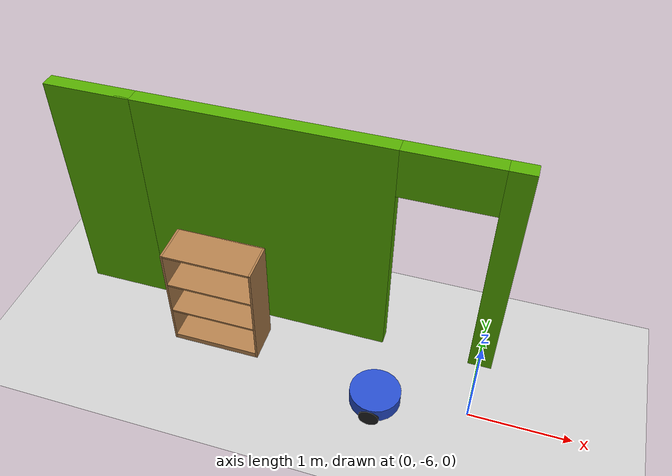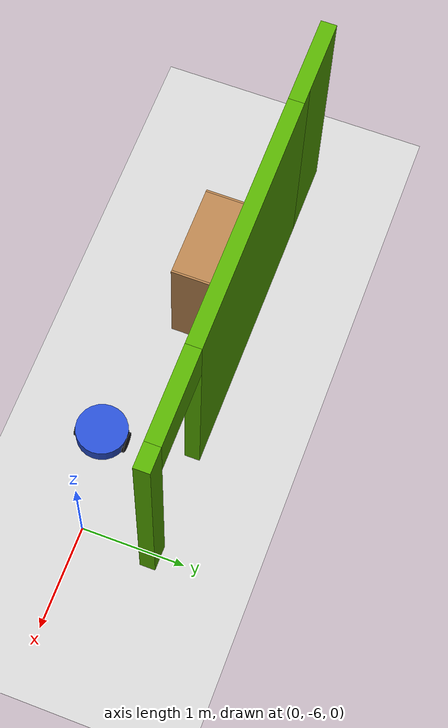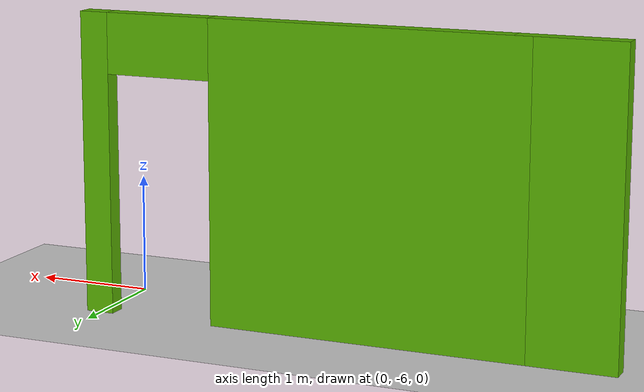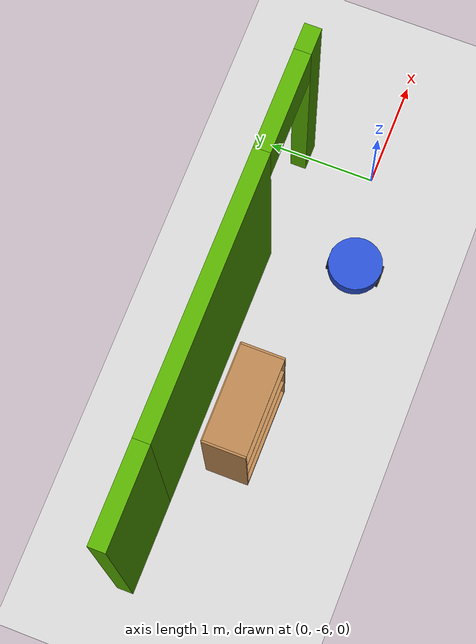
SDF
<sdf version="1.6">
 <world name="default">
  <model name="ground_plane">
   <static>1</static>
   <link name="link">
    <collision name="collision">
     <geometry><plane><normal>0 0 1</normal><size>100 100</size></plane></geometry>
     <surface><friction><ode><mu>100</mu><mu2>50</mu2></ode></friction></surface>
    </collision>
    <visual name="visual">
     <cast_shadows>0</cast_shadows>
     <geometry><plane><normal>0 0 1</normal><size>100 100</size></plane></geometry>
     <material>
      <script><uri>file://media/materials/scripts/gazebo.material</uri><name>Gazebo/Grey</name></script>
     </material>
    </visual>
   </link>
  </model>
  <model name="bookshelf">
   <static>1</static>
   <link name="link">
    <inertial><mass>1</mass></inertial>
    <collision name="back">
     <pose>0 0.005 0.6 0 -0 0</pose>
     <geometry><box><size>0.9 0.01 1.2</size></box></geometry>
    </collision>
    <visual name="visual1">
     <pose>0 0.005 0.6 0 -0 0</pose>
     <geometry><box><size>0.9 0.01 1.2</size></box></geometry>
     <material>
      <script><uri>file://media/materials/scripts/gazebo.material</uri><name>Gazebo/Wood</name></script>
     </material>
    </visual>
    <collision name="left_side">
     <pose>0.45 -0.195 0.6 0 -0 0</pose>
     <geometry><box><size>0.02 0.4 1.2</size></box></geometry>
    </collision>
    <visual name="visual2">
     <pose>0.45 -0.195 0.6 0 -0 0</pose>
     <geometry><box><size>0.02 0.4 1.2</size></box></geometry>
     <material>
      <script><uri>file://media/materials/scripts/gazebo.material</uri><name>Gazebo/Wood</name></script>
     </material>
    </visual>
    <collision name="right_side">
     <pose>-0.45 -0.195 0.6 0 -0 0</pose>
     <geometry><box><size>0.02 0.4 1.2</size></box></geometry>
    </collision>
    <visual name="visual3">
     <pose>-0.45 -0.195 0.6 0 -0 0</pose>
     <geometry><box><size>0.02 0.4 1.2</size></box></geometry>
     <material>
      <script><uri>file://media/materials/scripts/gazebo.material</uri><name>Gazebo/Wood</name></script>
     </material>
    </visual>
    <collision name="bottom">
     <pose>0 -0.195 0.03 0 -0 0</pose>
     <geometry><box><size>0.88 0.4 0.06</size></box></geometry>
    </collision>
    <visual name="visual4">
     <pose>0 -0.195 0.03 0 -0 0</pose>
     <geometry><box><size>0.88 0.4 0.06</size></box></geometry>
     <material>
      <script><uri>file://media/materials/scripts/gazebo.material</uri><name>Gazebo/Wood</name></script>
     </material>
    </visual>
    <collision name="top">
     <pose>0 -0.195 1.19 0 -0 0</pose>
     <geometry><box><size>0.88 0.4 0.02</size></box></geometry>
    </collision>
    <visual name="visual5">
     <pose>0 -0.195 1.19 0 -0 0</pose>
     <geometry><box><size>0.88 0.4 0.02</size></box></geometry>
     <material>
      <script><uri>file://media/materials/scripts/gazebo.material</uri><name>Gazebo/Wood</name></script>
     </material>
    </visual>
    <collision name="low_shelf">
     <pose>0 -0.195 0.43 0 -0 0</pose>
     <geometry><box><size>0.88 0.4 0.02</size></box></geometry>
    </collision>
    <visual name="visual6">
     <pose>0 -0.195 0.43 0 -0 0</pose>
     <geometry><box><size>0.88 0.4 0.02</size></box></geometry>
     <material>
      <script><uri>file://media/materials/scripts/gazebo.material</uri><name>Gazebo/Wood</name></script>
     </material>
    </visual>
    <collision name="high_shelf">
     <pose>0 -0.195 0.8 0 -0 0</pose>
     <geometry><box><size>0.88 0.4 0.02</size></box></geometry>
    </collision>
    <visual name="visual7">
     <pose>0 -0.195 0.8 0 -0 0</pose>
     <geometry><box><size>0.88 0.4 0.02</size></box></geometry>
     <material>
      <script><uri>file://media/materials/scripts/gazebo.material</uri><name>Gazebo/Wood</name></script>
     </material>
    </visual>
   </link>
   <pose>-2.65109 -5.5703 0 0 -0 0</pose>
  </model>
  <model name="Tartufino">
   <link name="link_0">
    <pose>0 0 0.04 0 -0 0</pose>
    <inertial>
     <mass>1</mass>
     <inertia><ixx>0.145833</ixx><ixy>0</ixy><ixz>0</ixz><iyy>0.145833</iyy><iyz>0</iyz><izz>0.125</izz></inertia>
    </inertial>
    <visual name="visual">
     <geometry><cylinder><radius>0.25</radius><length>0.15</length></cylinder></geometry>
     <material>
      <lighting>1</lighting>
      <script><uri>file://media/materials/scripts/gazebo.material</uri><name>Gazebo/Blue</name></script>
      <ambient>0.3 0.3 0.3 1</ambient>
      <diffuse>0.7 0.7 0.7 1</diffuse>
      <specular>0.01 0.01 0.01 1</specular>
      <emissive>0 0 0 1</emissive>
      <shader type="vertex"><normal_map>__default__</normal_map></shader>
     </material>
    </visual>
    <collision name="collision">
     <geometry><cylinder><radius>0.25</radius><length>0.15</length></cylinder></geometry>
     <surface>
      <friction>
       <ode><mu>1</mu><mu2>1</mu2><fdir1>0 0 0</fdir1><slip1>0</slip1><slip2>0</slip2></ode>
       <torsional>
        <coefficient>1</coefficient>
        <patch_radius>0</patch_radius>
        <surface_radius>0</surface_radius>
        <use_patch_radius>1</use_patch_radius>
        <ode><slip>0</slip></ode>
       </torsional>
      </friction>
      <bounce><restitution_coefficient>0</restitution_coefficient><threshold>1e+06</threshold></bounce>
      <contact>
       <collide_without_contact>0</collide_without_contact>
       <collide_without_contact_bitmask>1</collide_without_contact_bitmask>
       <collide_bitmask>1</collide_bitmask>
       <ode>
        <soft_cfm>0</soft_cfm>
        <soft_erp>0.2</soft_erp>
        <kp>1e+13</kp>
        <kd>1</kd>
        <max_vel>0.01</max_vel>
        <min_depth>0</min_depth>
       </ode>
       <bullet>
        <split_impulse>1</split_impulse>
        <split_impulse_penetration_threshold>-0.01</split_impulse_penetration_threshold>
        <soft_cfm>0</soft_cfm>
        <soft_erp>0.2</soft_erp>
        <kp>1e+13</kp>
        <kd>1</kd>
       </bullet>
      </contact>
     </surface>
    </collision>
   </link>
   <link name="link_1">
    <pose>0 0.2 -0.01 0 -0 0</pose>
    <inertial>
     <mass>1</mass>
     <inertia><ixx>0.145833</ixx><ixy>0</ixy><ixz>0</ixz><iyy>0.145833</iyy><iyz>0</iyz><izz>0.125</izz></inertia>
    </inertial>
    <visual name="visual">
     <pose>0 0 0 1.5708 -0 0</pose>
     <geometry><cylinder><radius>0.1</radius><length>0.1</length></cylinder></geometry>
     <material>
      <lighting>1</lighting>
      <script><uri>file://media/materials/scripts/gazebo.material</uri><name>Gazebo/Black</name></script>
      <ambient>0.3 0.3 0.3 1</ambient>
      <diffuse>0.7 0.7 0.7 1</diffuse>
      <specular>0.01 0.01 0.01 1</specular>
      <emissive>0 0 0 1</emissive>
      <shader type="vertex"><normal_map>__default__</normal_map></shader>
     </material>
    </visual>
    <collision name="collision">
     <pose>0 0 0 1.5708 -0 0</pose>
     <geometry><cylinder><radius>0.1</radius><length>0.1</length></cylinder></geometry>
     <surface>
      <friction>
       <ode><mu>1</mu><mu2>1</mu2><fdir1>0 0 0</fdir1><slip1>0</slip1><slip2>0</slip2></ode>
       <torsional>
        <coefficient>1</coefficient>
        <patch_radius>0</patch_radius>
        <surface_radius>0</surface_radius>
        <use_patch_radius>1</use_patch_radius>
        <ode><slip>0</slip></ode>
       </torsional>
      </friction>
      <bounce><restitution_coefficient>0</restitution_coefficient><threshold>1e+06</threshold></bounce>
      <contact>
       <collide_without_contact>0</collide_without_contact>
       <collide_without_contact_bitmask>1</collide_without_contact_bitmask>
       <collide_bitmask>1</collide_bitmask>
       <ode>
        <soft_cfm>0</soft_cfm>
        <soft_erp>0.2</soft_erp>
        <kp>1e+13</kp>
        <kd>1</kd>
        <max_vel>0.01</max_vel>
        <min_depth>0</min_depth>
       </ode>
       <bullet>
        <split_impulse>1</split_impulse>
        <split_impulse_penetration_threshold>-0.01</split_impulse_penetration_threshold>
        <soft_cfm>0</soft_cfm>
        <soft_erp>0.2</soft_erp>
        <kp>1e+13</kp>
        <kd>1</kd>
       </bullet>
      </contact>
     </surface>
    </collision>
   </link>
   <link name="link_1_clone">
    <pose>0 -0.2 -0.01 0 -0 0</pose>
    <inertial>
     <mass>1</mass>
     <inertia><ixx>0.145833</ixx><ixy>0</ixy><ixz>0</ixz><iyy>0.145833</iyy><iyz>0</iyz><izz>0.125</izz></inertia>
    </inertial>
    <visual name="visual">
     <pose>0 0 0 1.5708 -0 0</pose>
     <geometry><cylinder><radius>0.1</radius><length>0.1</length></cylinder></geometry>
     <material>
      <lighting>1</lighting>
      <script><uri>file://media/materials/scripts/gazebo.material</uri><name>Gazebo/Black</name></script>
      <ambient>0.3 0.3 0.3 1</ambient>
      <diffuse>0.7 0.7 0.7 1</diffuse>
      <specular>0.01 0.01 0.01 1</specular>
      <emissive>0 0 0 1</emissive>
      <shader type="vertex"><normal_map>__default__</normal_map></shader>
     </material>
    </visual>
    <collision name="collision">
     <pose>0 0 0 1.5708 -0 0</pose>
     <geometry><cylinder><radius>0.1</radius><length>0.1</length></cylinder></geometry>
     <surface>
      <friction>
       <ode><mu>1</mu><mu2>1</mu2><fdir1>0 0 0</fdir1><slip1>0</slip1><slip2>0</slip2></ode>
       <torsional>
        <coefficient>1</coefficient>
        <patch_radius>0</patch_radius>
        <surface_radius>0</surface_radius>
        <use_patch_radius>1</use_patch_radius>
        <ode><slip>0</slip></ode>
       </torsional>
      </friction>
      <bounce><restitution_coefficient>0</restitution_coefficient><threshold>1e+06</threshold></bounce>
      <contact>
       <collide_without_contact>0</collide_without_contact>
       <collide_without_contact_bitmask>1</collide_without_contact_bitmask>
       <collide_bitmask>1</collide_bitmask>
       <ode>
        <soft_cfm>0</soft_cfm>
        <soft_erp>0.2</soft_erp>
        <kp>1e+13</kp>
        <kd>1</kd>
        <max_vel>0.01</max_vel>
        <min_depth>0</min_depth>
       </ode>
       <bullet>
        <split_impulse>1</split_impulse>
        <split_impulse_penetration_threshold>-0.01</split_impulse_penetration_threshold>
        <soft_cfm>0</soft_cfm>
        <soft_erp>0.2</soft_erp>
        <kp>1e+13</kp>
        <kd>1</kd>
       </bullet>
      </contact>
     </surface>
    </collision>
   </link>
   <link name="link_2">
    <pose>-0.15 0 -0.01 0 -0 0</pose>
    <inertial>
     <mass>1</mass>
     <inertia><ixx>0.1</ixx><ixy>0</ixy><ixz>0</ixz><iyy>0.1</iyy><iyz>0</iyz><izz>0.1</izz></inertia>
    </inertial>
    <visual name="visual">
     <geometry><sphere><radius>0.1</radius></sphere></geometry>
     <material>
      <lighting>1</lighting>
      <script><uri>file://media/materials/scripts/gazebo.material</uri><name>Gazebo/Grey</name></script>
      <ambient>0.3 0.3 0.3 1</ambient>
      <diffuse>0.7 0.7 0.7 1</diffuse>
      <specular>0.01 0.01 0.01 1</specular>
      <emissive>0 0 0 1</emissive>
      <shader type="vertex"><normal_map>__default__</normal_map></shader>
     </material>
    </visual>
    <collision name="collision">
     <geometry><sphere><radius>0.1</radius></sphere></geometry>
     <surface>
      <friction>
       <ode><mu>0</mu><mu2>0</mu2><fdir1>0 0 0</fdir1><slip1>1</slip1><slip2>1</slip2></ode>
       <torsional>
        <coefficient>1</coefficient>
        <patch_radius>0</patch_radius>
        <surface_radius>0</surface_radius>
        <use_patch_radius>1</use_patch_radius>
        <ode><slip>0</slip></ode>
       </torsional>
      </friction>
      <bounce><restitution_coefficient>0</restitution_coefficient><threshold>1e+06</threshold></bounce>
      <contact>
       <collide_without_contact>0</collide_without_contact>
       <collide_without_contact_bitmask>1</collide_without_contact_bitmask>
       <collide_bitmask>1</collide_bitmask>
       <ode>
        <soft_cfm>0</soft_cfm>
        <soft_erp>0.2</soft_erp>
        <kp>1e+13</kp>
        <kd>1</kd>
        <max_vel>0.01</max_vel>
        <min_depth>0</min_depth>
       </ode>
       <bullet>
        <split_impulse>1</split_impulse>
        <split_impulse_penetration_threshold>-0.01</split_impulse_penetration_threshold>
        <soft_cfm>0</soft_cfm>
        <soft_erp>0.2</soft_erp>
        <kp>1e+13</kp>
        <kd>1</kd>
       </bullet>
      </contact>
     </surface>
    </collision>
   </link>
   <link name="link_2_clone">
    <pose>0.15 0 -0.01 0 -0 0</pose>
    <inertial>
     <mass>1</mass>
     <inertia><ixx>0.1</ixx><ixy>0</ixy><ixz>0</ixz><iyy>0.1</iyy><iyz>0</iyz><izz>0.1</izz></inertia>
    </inertial>
    <visual name="visual">
     <geometry><sphere><radius>0.1</radius></sphere></geometry>
     <material>
      <lighting>1</lighting>
      <script><uri>file://media/materials/scripts/gazebo.material</uri><name>Gazebo/Grey</name></script>
      <ambient>0.3 0.3 0.3 1</ambient>
      <diffuse>0.7 0.7 0.7 1</diffuse>
      <specular>0.01 0.01 0.01 1</specular>
      <emissive>0 0 0 1</emissive>
      <shader type="vertex"><normal_map>__default__</normal_map></shader>
     </material>
    </visual>
    <collision name="collision">
     <geometry><sphere><radius>0.1</radius></sphere></geometry>
     <surface>
      <friction>
       <ode><mu>0</mu><mu2>0</mu2><fdir1>0 0 0</fdir1><slip1>1</slip1><slip2>1</slip2></ode>
       <torsional>
        <coefficient>1</coefficient>
        <patch_radius>0</patch_radius>
        <surface_radius>0</surface_radius>
        <use_patch_radius>1</use_patch_radius>
        <ode><slip>0</slip></ode>
       </torsional>
      </friction>
      <bounce><restitution_coefficient>0</restitution_coefficient><threshold>1e+06</threshold></bounce>
      <contact>
       <collide_without_contact>0</collide_without_contact>
       <collide_without_contact_bitmask>1</collide_without_contact_bitmask>
       <collide_bitmask>1</collide_bitmask>
       <ode>
        <soft_cfm>0</soft_cfm>
        <soft_erp>0.2</soft_erp>
        <kp>1e+13</kp>
        <kd>1</kd>
        <max_vel>0.01</max_vel>
        <min_depth>0</min_depth>
       </ode>
       <bullet>
        <split_impulse>1</split_impulse>
        <split_impulse_penetration_threshold>-0.01</split_impulse_penetration_threshold>
        <soft_cfm>0</soft_cfm>
        <soft_erp>0.2</soft_erp>
        <kp>1e+13</kp>
        <kd>1</kd>
       </bullet>
      </contact>
     </surface>
    </collision>
   </link>
   <joint name="link_0_JOINT_1" type="revolute">
    <parent>link_0</parent>
    <child>link_1</child>
    <axis>
     <xyz>0 -1 0</xyz>
     <use_parent_model_frame>0</use_parent_model_frame>
     <limit>
      <lower>-1.79769e+308</lower>
      <upper>1.79769e+308</upper>
      <effort>-1</effort>
      <velocity>-1</velocity>
     </limit>
     <dynamics>
      <spring_reference>0</spring_reference>
      <spring_stiffness>0</spring_stiffness>
      <damping>0</damping>
      <friction>0</friction>
     </dynamics>
    </axis>
    <physics>
     <ode><limit><cfm>0</cfm><erp>0.2</erp></limit><suspension><cfm>0</cfm><erp>0.2</erp></suspension></ode>
    </physics>
   </joint>
   <joint name="link_0_JOINT_2" type="revolute">
    <parent>link_0</parent>
    <child>link_1_clone</child>
    <pose>0 -0.01 0 0 -0 0</pose>
    <axis>
     <xyz>0 1 0</xyz>
     <use_parent_model_frame>0</use_parent_model_frame>
     <limit>
      <lower>-1.79769e+308</lower>
      <upper>1.79769e+308</upper>
      <effort>-1</effort>
      <velocity>-1</velocity>
     </limit>
     <dynamics>
      <spring_reference>0</spring_reference>
      <spring_stiffness>0</spring_stiffness>
      <damping>0</damping>
     </dynamics>
    </axis>
    <physics>
     <ode><limit><cfm>0</cfm><erp>0.2</erp></limit><suspension><cfm>0</cfm><erp>0.2</erp></suspension></ode>
    </physics>
   </joint>
   <joint name="link_0_JOINT_4" type="fixed">
    <parent>link_0</parent>
    <child>link_2</child>
    <physics>
     <ode><limit><cfm>0</cfm><erp>0.2</erp></limit><suspension><cfm>0</cfm><erp>0.2</erp></suspension></ode>
    </physics>
   </joint>
   <joint name="link_0_JOINT_5" type="fixed">
    <parent>link_0</parent>
    <child>link_2_clone</child>
    <pose>0 0 -0.01 0 -0 0</pose>
    <physics>
     <ode><limit><cfm>0</cfm><erp>0.2</erp></limit><suspension><cfm>0</cfm><erp>0.2</erp></suspension></ode>
    </physics>
   </joint>
   <static>0</static>
   <pose>-0.891917 -6.15758 0.12 -1e-06 -0 0.003917</pose>
  </model>
  <model name="1floorHouse">
   <link name="Wall_294">
    <pose>-8.3305 -0.690004 0 0 -0 3.14159</pose>
    <visual name="Wall_294_Visual">
     <pose>0 0 1.25 0 -0 0</pose>
     <geometry><box><size>0.86941 0.15 2.5</size></box></geometry>
     <material>
      <script><uri>file://media/materials/scripts/gazebo.material</uri><name>Gazebo/Grey</name></script>
      <ambient>0.333333 0.666667 0 1</ambient>
      <diffuse>0.7 0.7 0.7 1</diffuse>
      <specular>0.01 0.01 0.01 1</specular>
      <emissive>0 0 0 1</emissive>
     </material>
    </visual>
    <collision name="Wall_294_Collision">
     <pose>0 0 1.25 0 -0 0</pose>
     <geometry><box><size>0.86941 0.15 2.5</size></box></geometry>
     <surface>
      <friction>
       <ode><mu>1</mu><mu2>1</mu2><fdir1>0 0 0</fdir1><slip1>0</slip1><slip2>0</slip2></ode>
       <torsional>
        <coefficient>1</coefficient>
        <patch_radius>0</patch_radius>
        <surface_radius>0</surface_radius>
        <use_patch_radius>1</use_patch_radius>
        <ode><slip>0</slip></ode>
       </torsional>
      </friction>
      <bounce><restitution_coefficient>0</restitution_coefficient><threshold>1e+06</threshold></bounce>
      <contact>
       <collide_without_contact>0</collide_without_contact>
       <collide_without_contact_bitmask>1</collide_without_contact_bitmask>
       <collide_bitmask>1</collide_bitmask>
       <ode>
        <soft_cfm>0</soft_cfm>
        <soft_erp>0.2</soft_erp>
        <kp>1e+13</kp>
        <kd>1</kd>
        <max_vel>0.01</max_vel>
        <min_depth>0</min_depth>
       </ode>
       <bullet>
        <split_impulse>1</split_impulse>
        <split_impulse_penetration_threshold>-0.01</split_impulse_penetration_threshold>
        <soft_cfm>0</soft_cfm>
        <soft_erp>0.2</soft_erp>
        <kp>1e+13</kp>
        <kd>1</kd>
       </bullet>
      </contact>
     </surface>
    </collision>
   </link>
   <link name="Wall_298">
    <pose>-6.1555 -0.690004 0 0 -0 3.14159</pose>
    <visual name="Wall_298_Visual_0">
     <pose>-1.77022 0 1.25 0 -0 0</pose>
     <geometry><box><size>0.240159 0.15 2.5</size></box></geometry>
     <material>
      <script><uri>file://media/materials/scripts/gazebo.material</uri><name>Gazebo/Grey</name></script>
      <ambient>0.333333 0.666667 0 1</ambient>
      <diffuse>0.7 0.7 0.7 1</diffuse>
      <specular>0.01 0.01 0.01 1</specular>
      <emissive>0 0 0 1</emissive>
     </material>
    </visual>
    <visual name="Wall_298_Visual_1">
     <pose>0.570079 0 1.25 0 -0 0</pose>
     <geometry><box><size>2.64043 0.15 2.5</size></box></geometry>
     <material>
      <script><uri>file://media/materials/scripts/gazebo.material</uri><name>Gazebo/Grey</name></script>
      <ambient>0.333333 0.666667 0 1</ambient>
      <diffuse>0.7 0.7 0.7 1</diffuse>
      <specular>0.01 0.01 0.01 1</specular>
      <emissive>0 0 0 1</emissive>
     </material>
    </visual>
    <visual name="Wall_298_Visual_2">
     <pose>-1.20014 0 2.25 0 -0 0</pose>
     <geometry><box><size>0.9 0.15 0.5</size></box></geometry>
     <material>
      <script><uri>file://media/materials/scripts/gazebo.material</uri><name>Gazebo/Grey</name></script>
      <ambient>0.333333 0.666667 0 1</ambient>
      <diffuse>0.7 0.7 0.7 1</diffuse>
      <specular>0.01 0.01 0.01 1</specular>
      <emissive>0 0 0 1</emissive>
     </material>
    </visual>
    <collision name="Wall_298_Collision_0">
     <pose>-1.77022 0 1.25 0 -0 0</pose>
     <geometry><box><size>0.240159 0.15 2.5</size></box></geometry>
     <surface>
      <friction>
       <ode><mu>1</mu><mu2>1</mu2><fdir1>0 0 0</fdir1><slip1>0</slip1><slip2>0</slip2></ode>
       <torsional>
        <coefficient>1</coefficient>
        <patch_radius>0</patch_radius>
        <surface_radius>0</surface_radius>
        <use_patch_radius>1</use_patch_radius>
        <ode><slip>0</slip></ode>
       </torsional>
      </friction>
      <bounce><restitution_coefficient>0</restitution_coefficient><threshold>1e+06</threshold></bounce>
      <contact>
       <collide_without_contact>0</collide_without_contact>
       <collide_without_contact_bitmask>1</collide_without_contact_bitmask>
       <collide_bitmask>1</collide_bitmask>
       <ode>
        <soft_cfm>0</soft_cfm>
        <soft_erp>0.2</soft_erp>
        <kp>1e+13</kp>
        <kd>1</kd>
        <max_vel>0.01</max_vel>
        <min_depth>0</min_depth>
       </ode>
       <bullet>
        <split_impulse>1</split_impulse>
        <split_impulse_penetration_threshold>-0.01</split_impulse_penetration_threshold>
        <soft_cfm>0</soft_cfm>
        <soft_erp>0.2</soft_erp>
        <kp>1e+13</kp>
        <kd>1</kd>
       </bullet>
      </contact>
     </surface>
    </collision>
    <collision name="Wall_298_Collision_1">
     <pose>0.570079 0 1.25 0 -0 0</pose>
     <geometry><box><size>2.64043 0.15 2.5</size></box></geometry>
     <surface>
      <friction>
       <ode><mu>1</mu><mu2>1</mu2><fdir1>0 0 0</fdir1><slip1>0</slip1><slip2>0</slip2></ode>
       <torsional>
        <coefficient>1</coefficient>
        <patch_radius>0</patch_radius>
        <surface_radius>0</surface_radius>
        <use_patch_radius>1</use_patch_radius>
        <ode><slip>0</slip></ode>
       </torsional>
      </friction>
      <bounce><restitution_coefficient>0</restitution_coefficient><threshold>1e+06</threshold></bounce>
      <contact>
       <collide_without_contact>0</collide_without_contact>
       <collide_without_contact_bitmask>1</collide_without_contact_bitmask>
       <collide_bitmask>1</collide_bitmask>
       <ode>
        <soft_cfm>0</soft_cfm>
        <soft_erp>0.2</soft_erp>
        <kp>1e+13</kp>
        <kd>1</kd>
        <max_vel>0.01</max_vel>
        <min_depth>0</min_depth>
       </ode>
       <bullet>
        <split_impulse>1</split_impulse>
        <split_impulse_penetration_threshold>-0.01</split_impulse_penetration_threshold>
        <soft_cfm>0</soft_cfm>
        <soft_erp>0.2</soft_erp>
        <kp>1e+13</kp>
        <kd>1</kd>
       </bullet>
      </contact>
     </surface>
    </collision>
    <collision name="Wall_298_Collision_2">
     <pose>-1.20014 0 2.25 0 -0 0</pose>
     <geometry><box><size>0.9 0.15 0.5</size></box></geometry>
     <surface>
      <friction>
       <ode><mu>1</mu><mu2>1</mu2><fdir1>0 0 0</fdir1><slip1>0</slip1><slip2>0</slip2></ode>
       <torsional>
        <coefficient>1</coefficient>
        <patch_radius>0</patch_radius>
        <surface_radius>0</surface_radius>
        <use_patch_radius>1</use_patch_radius>
        <ode><slip>0</slip></ode>
       </torsional>
      </friction>
      <bounce><restitution_coefficient>0</restitution_coefficient><threshold>1e+06</threshold></bounce>
      <contact>
       <collide_without_contact>0</collide_without_contact>
       <collide_without_contact_bitmask>1</collide_without_contact_bitmask>
       <collide_bitmask>1</collide_bitmask>
       <ode>
        <soft_cfm>0</soft_cfm>
        <soft_erp>0.2</soft_erp>
        <kp>1e+13</kp>
        <kd>1</kd>
        <max_vel>0.01</max_vel>
        <min_depth>0</min_depth>
       </ode>
       <bullet>
        <split_impulse>1</split_impulse>
        <split_impulse_penetration_threshold>-0.01</split_impulse_penetration_threshold>
        <soft_cfm>0</soft_cfm>
        <soft_erp>0.2</soft_erp>
        <kp>1e+13</kp>
        <kd>1</kd>
       </bullet>
      </contact>
     </surface>
    </collision>
   </link>
   <static>1</static>
   <pose>4.39833 -4.61297 0 0 -0 0</pose>
  </model>
 </world>
</sdf>
